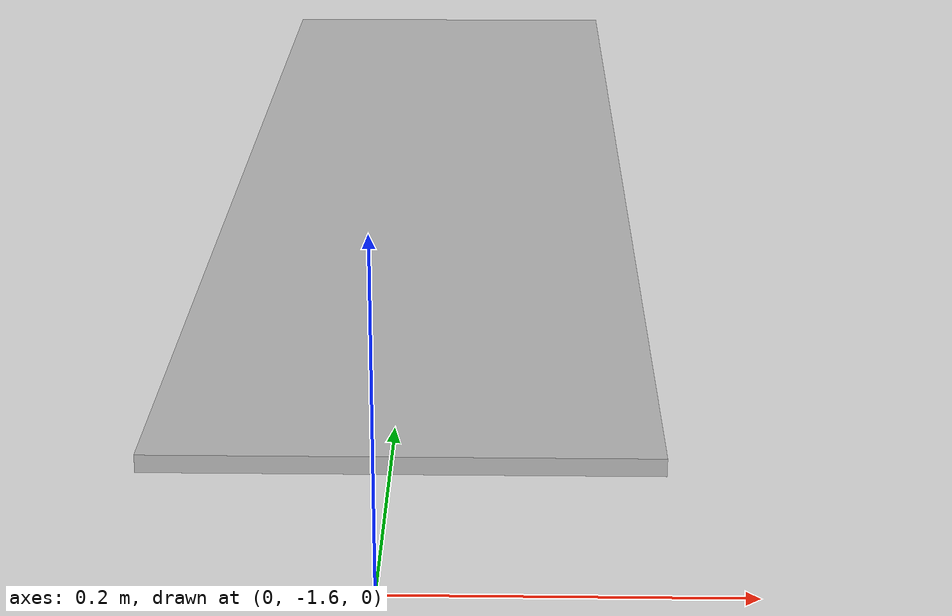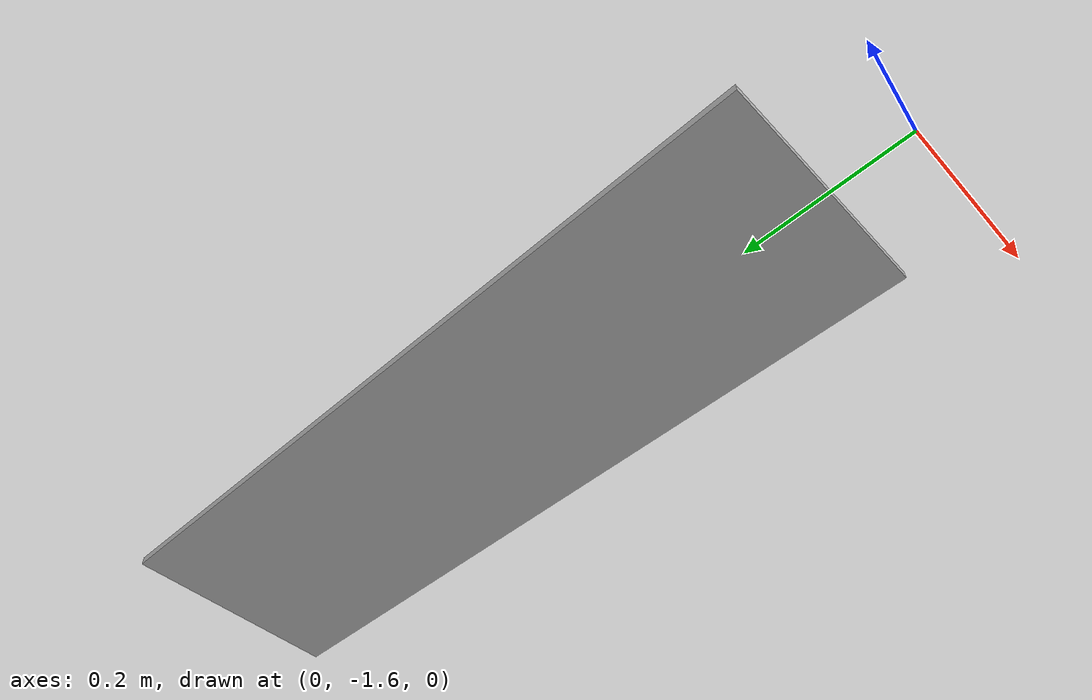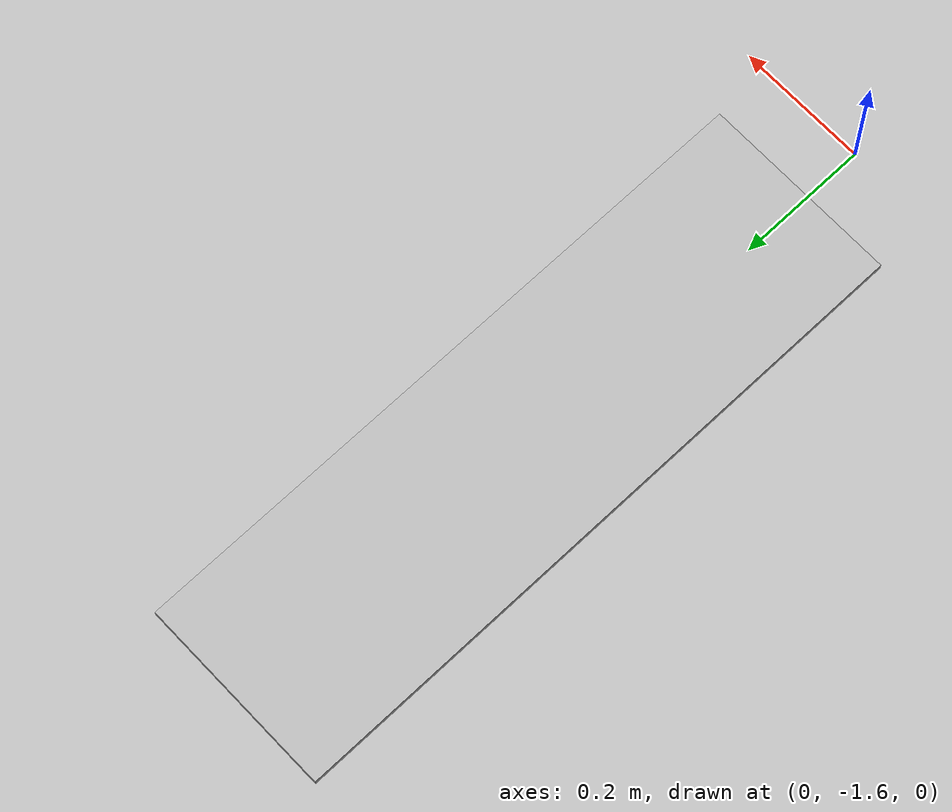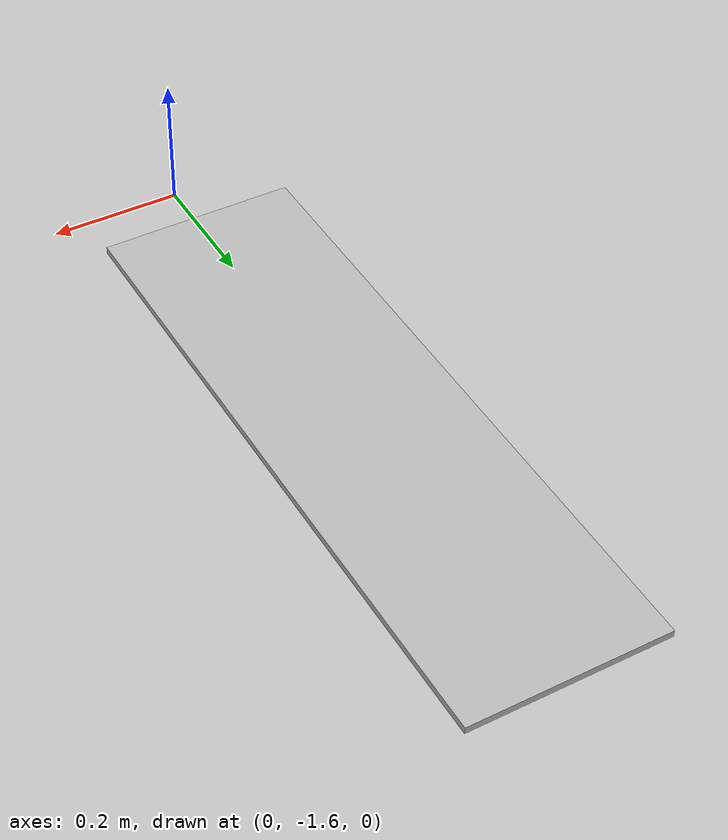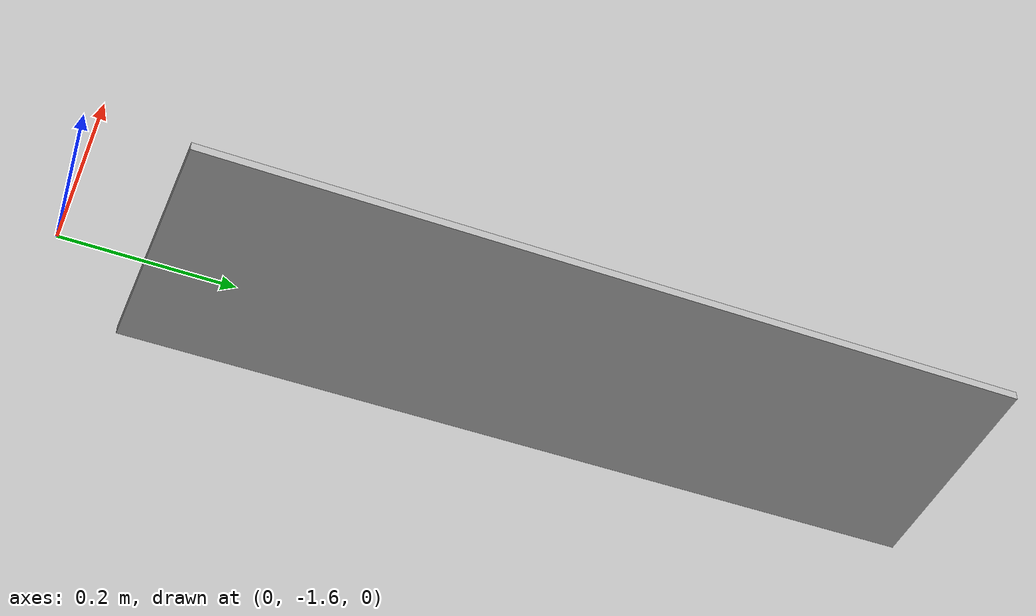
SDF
<?xml version='1.0'?>
<sdf version='1.7'>
  <model name='charging_pile'>
    <link name='base_link'>
      <inertial>
        <pose>0.008343 -1 0.024623 0 -0 0</pose>
        <mass>25.193</mass>
        <inertia>
          <ixx>2.09966</ixx>
          <ixy>-6.50595e-17</ixy>
          <ixz>5.94165e-19</ixz>
          <iyy>0.191225</iyy>
          <iyz>1.2837e-16</iyz>
          <izz>2.2904</izz>
        </inertia>
      </inertial>
      <collision name='base_link_collision'>
        <pose>0 0 0 0 -0 0</pose>
        <geometry>
          <mesh>
            <scale>1 1 1</scale>
            <uri>model://charging_pile/meshes/base_link.STL</uri>
          </mesh>
        </geometry>
      </collision>
      <visual name='base_link_visual'>
        <pose>0 0 0 0 -0 0</pose>
        <geometry>
          <mesh>
            <scale>1 1 1</scale>
            <uri>model://charging_pile/meshes/base_link.STL</uri>
          </mesh>
        </geometry>
      </visual>
    </link>
  </model>
</sdf>
